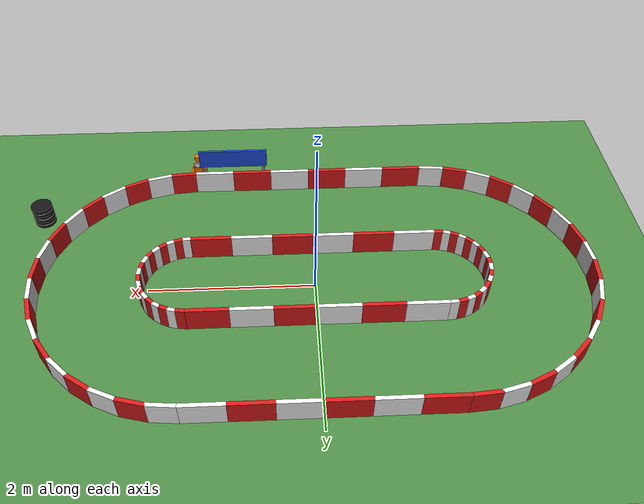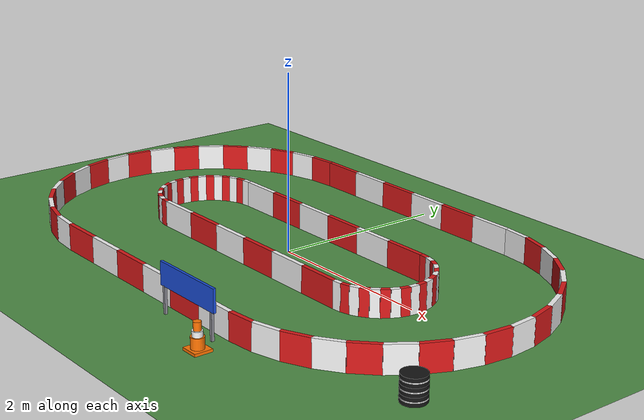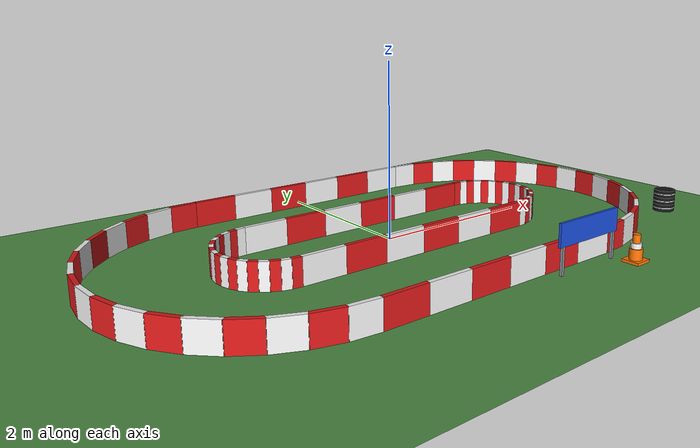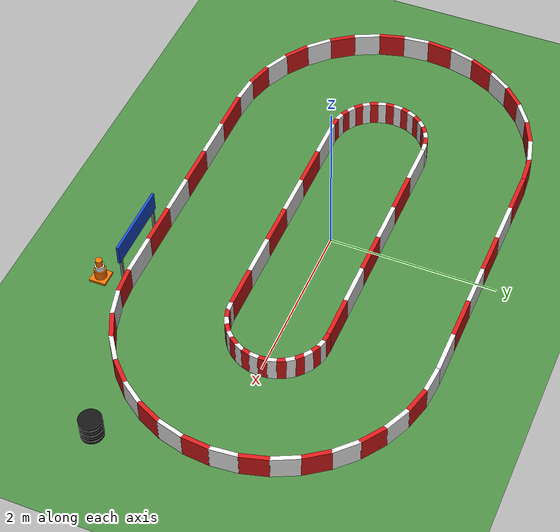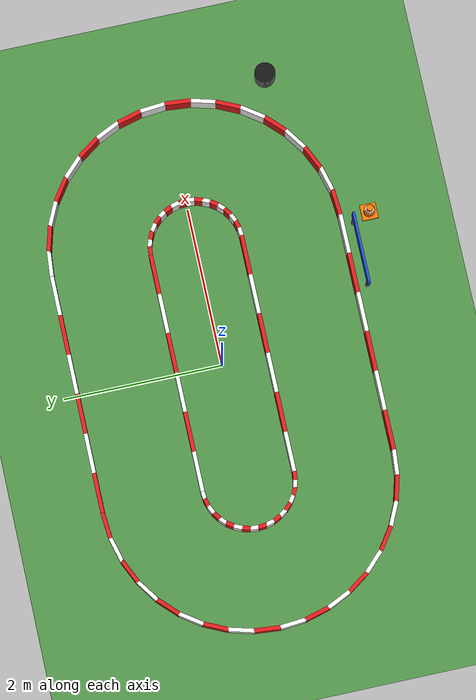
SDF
<sdf version="1.6">
 <world name="apex_circuit">
  <model name="ground_plane">
   <static>true</static>
   <link name="link">
    <collision name="collision">
     <geometry><plane><normal>0 0 1</normal><size>40 40</size></plane></geometry>
     <surface><friction><ode><mu>100</mu><mu2>50</mu2></ode></friction></surface>
    </collision>
    <visual name="visual">
     <geometry><plane><normal>0 0 1</normal><size>40 40</size></plane></geometry>
     <material><ambient>0.3 0.55 0.27 1</ambient><diffuse>0.3 0.55 0.27 1</diffuse></material>
    </visual>
   </link>
  </model>
  <model name="barrier_walls">
   <static>true</static>
   <link name="link">
    <visual name="outer0_v">
     <pose>-1.2500 -1.8250 0.1500 0 0 0.0000</pose>
     <geometry><box><size>0.5000 0.0500 0.3000</size></box></geometry>
     <material><ambient>0.85 0.1 0.1 1</ambient><diffuse>0.85 0.1 0.1 1</diffuse></material>
    </visual>
    <collision name="outer0_c">
     <pose>-1.2500 -1.8250 0.1500 0 0 0.0000</pose>
     <geometry><box><size>0.5000 0.0500 0.3000</size></box></geometry>
    </collision>
    <visual name="outer1_v">
     <pose>-0.7500 -1.8250 0.1500 0 0 0.0000</pose>
     <geometry><box><size>0.5000 0.0500 0.3000</size></box></geometry>
     <material><ambient>0.95 0.95 0.95 1</ambient><diffuse>0.95 0.95 0.95 1</diffuse></material>
    </visual>
    <collision name="outer1_c">
     <pose>-0.7500 -1.8250 0.1500 0 0 0.0000</pose>
     <geometry><box><size>0.5000 0.0500 0.3000</size></box></geometry>
    </collision>
    <visual name="outer2_v">
     <pose>-0.2500 -1.8250 0.1500 0 0 0.0000</pose>
     <geometry><box><size>0.5000 0.0500 0.3000</size></box></geometry>
     <material><ambient>0.85 0.1 0.1 1</ambient><diffuse>0.85 0.1 0.1 1</diffuse></material>
    </visual>
    <collision name="outer2_c">
     <pose>-0.2500 -1.8250 0.1500 0 0 0.0000</pose>
     <geometry><box><size>0.5000 0.0500 0.3000</size></box></geometry>
    </collision>
    <visual name="outer3_v">
     <pose>0.2500 -1.8250 0.1500 0 0 0.0000</pose>
     <geometry><box><size>0.5000 0.0500 0.3000</size></box></geometry>
     <material><ambient>0.95 0.95 0.95 1</ambient><diffuse>0.95 0.95 0.95 1</diffuse></material>
    </visual>
    <collision name="outer3_c">
     <pose>0.2500 -1.8250 0.1500 0 0 0.0000</pose>
     <geometry><box><size>0.5000 0.0500 0.3000</size></box></geometry>
    </collision>
    <visual name="outer4_v">
     <pose>0.7500 -1.8250 0.1500 0 0 0.0000</pose>
     <geometry><box><size>0.5000 0.0500 0.3000</size></box></geometry>
     <material><ambient>0.85 0.1 0.1 1</ambient><diffuse>0.85 0.1 0.1 1</diffuse></material>
    </visual>
    <collision name="outer4_c">
     <pose>0.7500 -1.8250 0.1500 0 0 0.0000</pose>
     <geometry><box><size>0.5000 0.0500 0.3000</size></box></geometry>
    </collision>
    <visual name="outer5_v">
     <pose>1.2500 -1.8250 0.1500 0 0 0.0000</pose>
     <geometry><box><size>0.5000 0.0500 0.3000</size></box></geometry>
     <material><ambient>0.95 0.95 0.95 1</ambient><diffuse>0.95 0.95 0.95 1</diffuse></material>
    </visual>
    <collision name="outer5_c">
     <pose>1.2500 -1.8250 0.1500 0 0 0.0000</pose>
     <geometry><box><size>0.5000 0.0500 0.3000</size></box></geometry>
    </collision>
    <visual name="outer6_v">
     <pose>-1.2500 1.8250 0.1500 0 0 0.0000</pose>
     <geometry><box><size>0.5000 0.0500 0.3000</size></box></geometry>
     <material><ambient>0.85 0.1 0.1 1</ambient><diffuse>0.85 0.1 0.1 1</diffuse></material>
    </visual>
    <collision name="outer6_c">
     <pose>-1.2500 1.8250 0.1500 0 0 0.0000</pose>
     <geometry><box><size>0.5000 0.0500 0.3000</size></box></geometry>
    </collision>
    <visual name="outer7_v">
     <pose>-0.7500 1.8250 0.1500 0 0 0.0000</pose>
     <geometry><box><size>0.5000 0.0500 0.3000</size></box></geometry>
     <material><ambient>0.95 0.95 0.95 1</ambient><diffuse>0.95 0.95 0.95 1</diffuse></material>
    </visual>
    <collision name="outer7_c">
     <pose>-0.7500 1.8250 0.1500 0 0 0.0000</pose>
     <geometry><box><size>0.5000 0.0500 0.3000</size></box></geometry>
    </collision>
    <visual name="outer8_v">
     <pose>-0.2500 1.8250 0.1500 0 0 0.0000</pose>
     <geometry><box><size>0.5000 0.0500 0.3000</size></box></geometry>
     <material><ambient>0.85 0.1 0.1 1</ambient><diffuse>0.85 0.1 0.1 1</diffuse></material>
    </visual>
    <collision name="outer8_c">
     <pose>-0.2500 1.8250 0.1500 0 0 0.0000</pose>
     <geometry><box><size>0.5000 0.0500 0.3000</size></box></geometry>
    </collision>
    <visual name="outer9_v">
     <pose>0.2500 1.8250 0.1500 0 0 0.0000</pose>
     <geometry><box><size>0.5000 0.0500 0.3000</size></box></geometry>
     <material><ambient>0.95 0.95 0.95 1</ambient><diffuse>0.95 0.95 0.95 1</diffuse></material>
    </visual>
    <collision name="outer9_c">
     <pose>0.2500 1.8250 0.1500 0 0 0.0000</pose>
     <geometry><box><size>0.5000 0.0500 0.3000</size></box></geometry>
    </collision>
    <visual name="outer10_v">
     <pose>0.7500 1.8250 0.1500 0 0 0.0000</pose>
     <geometry><box><size>0.5000 0.0500 0.3000</size></box></geometry>
     <material><ambient>0.85 0.1 0.1 1</ambient><diffuse>0.85 0.1 0.1 1</diffuse></material>
    </visual>
    <collision name="outer10_c">
     <pose>0.7500 1.8250 0.1500 0 0 0.0000</pose>
     <geometry><box><size>0.5000 0.0500 0.3000</size></box></geometry>
    </collision>
    <visual name="outer11_v">
     <pose>1.2500 1.8250 0.1500 0 0 0.0000</pose>
     <geometry><box><size>0.5000 0.0500 0.3000</size></box></geometry>
     <material><ambient>0.95 0.95 0.95 1</ambient><diffuse>0.95 0.95 0.95 1</diffuse></material>
    </visual>
    <collision name="outer11_c">
     <pose>1.2500 1.8250 0.1500 0 0 0.0000</pose>
     <geometry><box><size>0.5000 0.0500 0.3000</size></box></geometry>
    </collision>
    <visual name="outer12_v">
     <pose>1.6585 -1.8111 0.1500 0 0 0.0873</pose>
     <geometry><box><size>0.3281 0.0500 0.3000</size></box></geometry>
     <material><ambient>0.85 0.1 0.1 1</ambient><diffuse>0.85 0.1 0.1 1</diffuse></material>
    </visual>
    <collision name="outer12_c">
     <pose>1.6585 -1.8111 0.1500 0 0 0.0873</pose>
     <geometry><box><size>0.3281 0.0500 0.3000</size></box></geometry>
    </collision>
    <visual name="outer13_v">
     <pose>1.9705 -1.7561 0.1500 0 0 0.2618</pose>
     <geometry><box><size>0.3281 0.0500 0.3000</size></box></geometry>
     <material><ambient>0.95 0.95 0.95 1</ambient><diffuse>0.95 0.95 0.95 1</diffuse></material>
    </visual>
    <collision name="outer13_c">
     <pose>1.9705 -1.7561 0.1500 0 0 0.2618</pose>
     <geometry><box><size>0.3281 0.0500 0.3000</size></box></geometry>
    </collision>
    <visual name="outer14_v">
     <pose>2.2683 -1.6477 0.1500 0 0 0.4363</pose>
     <geometry><box><size>0.3281 0.0500 0.3000</size></box></geometry>
     <material><ambient>0.85 0.1 0.1 1</ambient><diffuse>0.85 0.1 0.1 1</diffuse></material>
    </visual>
    <collision name="outer14_c">
     <pose>2.2683 -1.6477 0.1500 0 0 0.4363</pose>
     <geometry><box><size>0.3281 0.0500 0.3000</size></box></geometry>
    </collision>
    <visual name="outer15_v">
     <pose>2.5428 -1.4893 0.1500 0 0 0.6109</pose>
     <geometry><box><size>0.3281 0.0500 0.3000</size></box></geometry>
     <material><ambient>0.95 0.95 0.95 1</ambient><diffuse>0.95 0.95 0.95 1</diffuse></material>
    </visual>
    <collision name="outer15_c">
     <pose>2.5428 -1.4893 0.1500 0 0 0.6109</pose>
     <geometry><box><size>0.3281 0.0500 0.3000</size></box></geometry>
    </collision>
    <visual name="outer16_v">
     <pose>2.7856 -1.2856 0.1500 0 0 0.7854</pose>
     <geometry><box><size>0.3281 0.0500 0.3000</size></box></geometry>
     <material><ambient>0.85 0.1 0.1 1</ambient><diffuse>0.85 0.1 0.1 1</diffuse></material>
    </visual>
    <collision name="outer16_c">
     <pose>2.7856 -1.2856 0.1500 0 0 0.7854</pose>
     <geometry><box><size>0.3281 0.0500 0.3000</size></box></geometry>
    </collision>
    <visual name="outer17_v">
     <pose>2.9893 -1.0428 0.1500 0 0 0.9599</pose>
     <geometry><box><size>0.3281 0.0500 0.3000</size></box></geometry>
     <material><ambient>0.95 0.95 0.95 1</ambient><diffuse>0.95 0.95 0.95 1</diffuse></material>
    </visual>
    <collision name="outer17_c">
     <pose>2.9893 -1.0428 0.1500 0 0 0.9599</pose>
     <geometry><box><size>0.3281 0.0500 0.3000</size></box></geometry>
    </collision>
    <visual name="outer18_v">
     <pose>3.1477 -0.7683 0.1500 0 0 1.1345</pose>
     <geometry><box><size>0.3281 0.0500 0.3000</size></box></geometry>
     <material><ambient>0.85 0.1 0.1 1</ambient><diffuse>0.85 0.1 0.1 1</diffuse></material>
    </visual>
    <collision name="outer18_c">
     <pose>3.1477 -0.7683 0.1500 0 0 1.1345</pose>
     <geometry><box><size>0.3281 0.0500 0.3000</size></box></geometry>
    </collision>
    <visual name="outer19_v">
     <pose>3.2561 -0.4705 0.1500 0 0 1.3090</pose>
     <geometry><box><size>0.3281 0.0500 0.3000</size></box></geometry>
     <material><ambient>0.95 0.95 0.95 1</ambient><diffuse>0.95 0.95 0.95 1</diffuse></material>
    </visual>
    <collision name="outer19_c">
     <pose>3.2561 -0.4705 0.1500 0 0 1.3090</pose>
     <geometry><box><size>0.3281 0.0500 0.3000</size></box></geometry>
    </collision>
    <visual name="outer20_v">
     <pose>3.3111 -0.1585 0.1500 0 0 1.4835</pose>
     <geometry><box><size>0.3281 0.0500 0.3000</size></box></geometry>
     <material><ambient>0.85 0.1 0.1 1</ambient><diffuse>0.85 0.1 0.1 1</diffuse></material>
    </visual>
    <collision name="outer20_c">
     <pose>3.3111 -0.1585 0.1500 0 0 1.4835</pose>
     <geometry><box><size>0.3281 0.0500 0.3000</size></box></geometry>
    </collision>
    <visual name="outer21_v">
     <pose>3.3111 0.1585 0.1500 0 0 1.6581</pose>
     <geometry><box><size>0.3281 0.0500 0.3000</size></box></geometry>
     <material><ambient>0.95 0.95 0.95 1</ambient><diffuse>0.95 0.95 0.95 1</diffuse></material>
    </visual>
    <collision name="outer21_c">
     <pose>3.3111 0.1585 0.1500 0 0 1.6581</pose>
     <geometry><box><size>0.3281 0.0500 0.3000</size></box></geometry>
    </collision>
    <visual name="outer22_v">
     <pose>3.2561 0.4705 0.1500 0 0 1.8326</pose>
     <geometry><box><size>0.3281 0.0500 0.3000</size></box></geometry>
     <material><ambient>0.85 0.1 0.1 1</ambient><diffuse>0.85 0.1 0.1 1</diffuse></material>
    </visual>
    <collision name="outer22_c">
     <pose>3.2561 0.4705 0.1500 0 0 1.8326</pose>
     <geometry><box><size>0.3281 0.0500 0.3000</size></box></geometry>
    </collision>
    <visual name="outer23_v">
     <pose>3.1477 0.7683 0.1500 0 0 2.0071</pose>
     <geometry><box><size>0.3281 0.0500 0.3000</size></box></geometry>
     <material><ambient>0.95 0.95 0.95 1</ambient><diffuse>0.95 0.95 0.95 1</diffuse></material>
    </visual>
    <collision name="outer23_c">
     <pose>3.1477 0.7683 0.1500 0 0 2.0071</pose>
     <geometry><box><size>0.3281 0.0500 0.3000</size></box></geometry>
    </collision>
    <visual name="outer24_v">
     <pose>2.9893 1.0428 0.1500 0 0 2.1817</pose>
     <geometry><box><size>0.3281 0.0500 0.3000</size></box></geometry>
     <material><ambient>0.85 0.1 0.1 1</ambient><diffuse>0.85 0.1 0.1 1</diffuse></material>
    </visual>
    <collision name="outer24_c">
     <pose>2.9893 1.0428 0.1500 0 0 2.1817</pose>
     <geometry><box><size>0.3281 0.0500 0.3000</size></box></geometry>
    </collision>
    <visual name="outer25_v">
     <pose>2.7856 1.2856 0.1500 0 0 2.3562</pose>
     <geometry><box><size>0.3281 0.0500 0.3000</size></box></geometry>
     <material><ambient>0.95 0.95 0.95 1</ambient><diffuse>0.95 0.95 0.95 1</diffuse></material>
    </visual>
    <collision name="outer25_c">
     <pose>2.7856 1.2856 0.1500 0 0 2.3562</pose>
     <geometry><box><size>0.3281 0.0500 0.3000</size></box></geometry>
    </collision>
    <visual name="outer26_v">
     <pose>2.5428 1.4893 0.1500 0 0 2.5307</pose>
     <geometry><box><size>0.3281 0.0500 0.3000</size></box></geometry>
     <material><ambient>0.85 0.1 0.1 1</ambient><diffuse>0.85 0.1 0.1 1</diffuse></material>
    </visual>
    <collision name="outer26_c">
     <pose>2.5428 1.4893 0.1500 0 0 2.5307</pose>
     <geometry><box><size>0.3281 0.0500 0.3000</size></box></geometry>
    </collision>
    <visual name="outer27_v">
     <pose>2.2683 1.6477 0.1500 0 0 2.7053</pose>
     <geometry><box><size>0.3281 0.0500 0.3000</size></box></geometry>
     <material><ambient>0.95 0.95 0.95 1</ambient><diffuse>0.95 0.95 0.95 1</diffuse></material>
    </visual>
    <collision name="outer27_c">
     <pose>2.2683 1.6477 0.1500 0 0 2.7053</pose>
     <geometry><box><size>0.3281 0.0500 0.3000</size></box></geometry>
    </collision>
    <visual name="outer28_v">
     <pose>1.9705 1.7561 0.1500 0 0 2.8798</pose>
     <geometry><box><size>0.3281 0.0500 0.3000</size></box></geometry>
     <material><ambient>0.85 0.1 0.1 1</ambient><diffuse>0.85 0.1 0.1 1</diffuse></material>
    </visual>
    <collision name="outer28_c">
     <pose>1.9705 1.7561 0.1500 0 0 2.8798</pose>
     <geometry><box><size>0.3281 0.0500 0.3000</size></box></geometry>
    </collision>
    <visual name="outer29_v">
     <pose>1.6585 1.8111 0.1500 0 0 3.0543</pose>
     <geometry><box><size>0.3281 0.0500 0.3000</size></box></geometry>
     <material><ambient>0.95 0.95 0.95 1</ambient><diffuse>0.95 0.95 0.95 1</diffuse></material>
    </visual>
    <collision name="outer29_c">
     <pose>1.6585 1.8111 0.1500 0 0 3.0543</pose>
     <geometry><box><size>0.3281 0.0500 0.3000</size></box></geometry>
    </collision>
    <visual name="outer30_v">
     <pose>-1.6585 1.8111 0.1500 0 0 3.2289</pose>
     <geometry><box><size>0.3281 0.0500 0.3000</size></box></geometry>
     <material><ambient>0.85 0.1 0.1 1</ambient><diffuse>0.85 0.1 0.1 1</diffuse></material>
    </visual>
    <collision name="outer30_c">
     <pose>-1.6585 1.8111 0.1500 0 0 3.2289</pose>
     <geometry><box><size>0.3281 0.0500 0.3000</size></box></geometry>
    </collision>
    <visual name="outer31_v">
     <pose>-1.9705 1.7561 0.1500 0 0 3.4034</pose>
     <geometry><box><size>0.3281 0.0500 0.3000</size></box></geometry>
     <material><ambient>0.95 0.95 0.95 1</ambient><diffuse>0.95 0.95 0.95 1</diffuse></material>
    </visual>
    <collision name="outer31_c">
     <pose>-1.9705 1.7561 0.1500 0 0 3.4034</pose>
     <geometry><box><size>0.3281 0.0500 0.3000</size></box></geometry>
    </collision>
    <visual name="outer32_v">
     <pose>-2.2683 1.6477 0.1500 0 0 3.5779</pose>
     <geometry><box><size>0.3281 0.0500 0.3000</size></box></geometry>
     <material><ambient>0.85 0.1 0.1 1</ambient><diffuse>0.85 0.1 0.1 1</diffuse></material>
    </visual>
    <collision name="outer32_c">
     <pose>-2.2683 1.6477 0.1500 0 0 3.5779</pose>
     <geometry><box><size>0.3281 0.0500 0.3000</size></box></geometry>
    </collision>
    <visual name="outer33_v">
     <pose>-2.5428 1.4893 0.1500 0 0 3.7525</pose>
     <geometry><box><size>0.3281 0.0500 0.3000</size></box></geometry>
     <material><ambient>0.95 0.95 0.95 1</ambient><diffuse>0.95 0.95 0.95 1</diffuse></material>
    </visual>
    <collision name="outer33_c">
     <pose>-2.5428 1.4893 0.1500 0 0 3.7525</pose>
     <geometry><box><size>0.3281 0.0500 0.3000</size></box></geometry>
    </collision>
    <visual name="outer34_v">
     <pose>-2.7856 1.2856 0.1500 0 0 3.9270</pose>
     <geometry><box><size>0.3281 0.0500 0.3000</size></box></geometry>
     <material><ambient>0.85 0.1 0.1 1</ambient><diffuse>0.85 0.1 0.1 1</diffuse></material>
    </visual>
    <collision name="outer34_c">
     <pose>-2.7856 1.2856 0.1500 0 0 3.9270</pose>
     <geometry><box><size>0.3281 0.0500 0.3000</size></box></geometry>
    </collision>
    <visual name="outer35_v">
     <pose>-2.9893 1.0428 0.1500 0 0 4.1015</pose>
     <geometry><box><size>0.3281 0.0500 0.3000</size></box></geometry>
     <material><ambient>0.95 0.95 0.95 1</ambient><diffuse>0.95 0.95 0.95 1</diffuse></material>
    </visual>
    <collision name="outer35_c">
     <pose>-2.9893 1.0428 0.1500 0 0 4.1015</pose>
     <geometry><box><size>0.3281 0.0500 0.3000</size></box></geometry>
    </collision>
    <visual name="outer36_v">
     <pose>-3.1477 0.7683 0.1500 0 0 4.2761</pose>
     <geometry><box><size>0.3281 0.0500 0.3000</size></box></geometry>
     <material><ambient>0.85 0.1 0.1 1</ambient><diffuse>0.85 0.1 0.1 1</diffuse></material>
    </visual>
    <collision name="outer36_c">
     <pose>-3.1477 0.7683 0.1500 0 0 4.2761</pose>
     <geometry><box><size>0.3281 0.0500 0.3000</size></box></geometry>
    </collision>
    <visual name="outer37_v">
     <pose>-3.2561 0.4705 0.1500 0 0 4.4506</pose>
     <geometry><box><size>0.3281 0.0500 0.3000</size></box></geometry>
     <material><ambient>0.95 0.95 0.95 1</ambient><diffuse>0.95 0.95 0.95 1</diffuse></material>
    </visual>
    <collision name="outer37_c">
     <pose>-3.2561 0.4705 0.1500 0 0 4.4506</pose>
     <geometry><box><size>0.3281 0.0500 0.3000</size></box></geometry>
    </collision>
    <visual name="outer38_v">
     <pose>-3.3111 0.1585 0.1500 0 0 4.6251</pose>
     <geometry><box><size>0.3281 0.0500 0.3000</size></box></geometry>
     <material><ambient>0.85 0.1 0.1 1</ambient><diffuse>0.85 0.1 0.1 1</diffuse></material>
    </visual>
    <collision name="outer38_c">
     <pose>-3.3111 0.1585 0.1500 0 0 4.6251</pose>
     <geometry><box><size>0.3281 0.0500 0.3000</size></box></geometry>
    </collision>
    <visual name="outer39_v">
     <pose>-3.3111 -0.1585 0.1500 0 0 4.7997</pose>
     <geometry><box><size>0.3281 0.0500 0.3000</size></box></geometry>
     <material><ambient>0.95 0.95 0.95 1</ambient><diffuse>0.95 0.95 0.95 1</diffuse></material>
    </visual>
    <collision name="outer39_c">
     <pose>-3.3111 -0.1585 0.1500 0 0 4.7997</pose>
     <geometry><box><size>0.3281 0.0500 0.3000</size></box></geometry>
    </collision>
    <visual name="outer40_v">
     <pose>-3.2561 -0.4705 0.1500 0 0 4.9742</pose>
     <geometry><box><size>0.3281 0.0500 0.3000</size></box></geometry>
     <material><ambient>0.85 0.1 0.1 1</ambient><diffuse>0.85 0.1 0.1 1</diffuse></material>
    </visual>
    <collision name="outer40_c">
     <pose>-3.2561 -0.4705 0.1500 0 0 4.9742</pose>
     <geometry><box><size>0.3281 0.0500 0.3000</size></box></geometry>
    </collision>
    <visual name="outer41_v">
     <pose>-3.1477 -0.7683 0.1500 0 0 5.1487</pose>
     <geometry><box><size>0.3281 0.0500 0.3000</size></box></geometry>
     <material><ambient>0.95 0.95 0.95 1</ambient><diffuse>0.95 0.95 0.95 1</diffuse></material>
    </visual>
    <collision name="outer41_c">
     <pose>-3.1477 -0.7683 0.1500 0 0 5.1487</pose>
     <geometry><box><size>0.3281 0.0500 0.3000</size></box></geometry>
    </collision>
    <visual name="outer42_v">
     <pose>-2.9893 -1.0428 0.1500 0 0 5.3233</pose>
     <geometry><box><size>0.3281 0.0500 0.3000</size></box></geometry>
     <material><ambient>0.85 0.1 0.1 1</ambient><diffuse>0.85 0.1 0.1 1</diffuse></material>
    </visual>
    <collision name="outer42_c">
     <pose>-2.9893 -1.0428 0.1500 0 0 5.3233</pose>
     <geometry><box><size>0.3281 0.0500 0.3000</size></box></geometry>
    </collision>
    <visual name="outer43_v">
     <pose>-2.7856 -1.2856 0.1500 0 0 5.4978</pose>
     <geometry><box><size>0.3281 0.0500 0.3000</size></box></geometry>
     <material><ambient>0.95 0.95 0.95 1</ambient><diffuse>0.95 0.95 0.95 1</diffuse></material>
    </visual>
    <collision name="outer43_c">
     <pose>-2.7856 -1.2856 0.1500 0 0 5.4978</pose>
     <geometry><box><size>0.3281 0.0500 0.3000</size></box></geometry>
    </collision>
    <visual name="outer44_v">
     <pose>-2.5428 -1.4893 0.1500 0 0 5.6723</pose>
     <geometry><box><size>0.3281 0.0500 0.3000</size></box></geometry>
     <material><ambient>0.85 0.1 0.1 1</ambient><diffuse>0.85 0.1 0.1 1</diffuse></material>
    </visual>
    <collision name="outer44_c">
     <pose>-2.5428 -1.4893 0.1500 0 0 5.6723</pose>
     <geometry><box><size>0.3281 0.0500 0.3000</size></box></geometry>
    </collision>
    <visual name="outer45_v">
     <pose>-2.2683 -1.6477 0.1500 0 0 5.8469</pose>
     <geometry><box><size>0.3281 0.0500 0.3000</size></box></geometry>
     <material><ambient>0.95 0.95 0.95 1</ambient><diffuse>0.95 0.95 0.95 1</diffuse></material>
    </visual>
    <collision name="outer45_c">
     <pose>-2.2683 -1.6477 0.1500 0 0 5.8469</pose>
     <geometry><box><size>0.3281 0.0500 0.3000</size></box></geometry>
    </collision>
    <visual name="outer46_v">
     <pose>-1.9705 -1.7561 0.1500 0 0 6.0214</pose>
     <geometry><box><size>0.3281 0.0500 0.3000</size></box></geometry>
     <material><ambient>0.85 0.1 0.1 1</ambient><diffuse>0.85 0.1 0.1 1</diffuse></material>
    </visual>
    <collision name="outer46_c">
     <pose>-1.9705 -1.7561 0.1500 0 0 6.0214</pose>
     <geometry><box><size>0.3281 0.0500 0.3000</size></box></geometry>
    </collision>
    <visual name="outer47_v">
     <pose>-1.6585 -1.8111 0.1500 0 0 6.1959</pose>
     <geometry><box><size>0.3281 0.0500 0.3000</size></box></geometry>
     <material><ambient>0.95 0.95 0.95 1</ambient><diffuse>0.95 0.95 0.95 1</diffuse></material>
    </visual>
    <collision name="outer47_c">
     <pose>-1.6585 -1.8111 0.1500 0 0 6.1959</pose>
     <geometry><box><size>0.3281 0.0500 0.3000</size></box></geometry>
    </collision>
    <visual name="inner0_v">
     <pose>-1.2500 -0.5750 0.1500 0 0 0.0000</pose>
     <geometry><box><size>0.5000 0.0500 0.3000</size></box></geometry>
     <material><ambient>0.95 0.95 0.95 1</ambient><diffuse>0.95 0.95 0.95 1</diffuse></material>
    </visual>
    <collision name="inner0_c">
     <pose>-1.2500 -0.5750 0.1500 0 0 0.0000</pose>
     <geometry><box><size>0.5000 0.0500 0.3000</size></box></geometry>
    </collision>
    <visual name="inner1_v">
     <pose>-0.7500 -0.5750 0.1500 0 0 0.0000</pose>
     <geometry><box><size>0.5000 0.0500 0.3000</size></box></geometry>
     <material><ambient>0.85 0.1 0.1 1</ambient><diffuse>0.85 0.1 0.1 1</diffuse></material>
    </visual>
    <collision name="inner1_c">
     <pose>-0.7500 -0.5750 0.1500 0 0 0.0000</pose>
     <geometry><box><size>0.5000 0.0500 0.3000</size></box></geometry>
    </collision>
    <visual name="inner2_v">
     <pose>-0.2500 -0.5750 0.1500 0 0 0.0000</pose>
     <geometry><box><size>0.5000 0.0500 0.3000</size></box></geometry>
     <material><ambient>0.95 0.95 0.95 1</ambient><diffuse>0.95 0.95 0.95 1</diffuse></material>
    </visual>
    <collision name="inner2_c">
     <pose>-0.2500 -0.5750 0.1500 0 0 0.0000</pose>
     <geometry><box><size>0.5000 0.0500 0.3000</size></box></geometry>
    </collision>
    <visual name="inner3_v">
     <pose>0.2500 -0.5750 0.1500 0 0 0.0000</pose>
     <geometry><box><size>0.5000 0.0500 0.3000</size></box></geometry>
     <material><ambient>0.85 0.1 0.1 1</ambient><diffuse>0.85 0.1 0.1 1</diffuse></material>
    </visual>
    <collision name="inner3_c">
     <pose>0.2500 -0.5750 0.1500 0 0 0.0000</pose>
     <geometry><box><size>0.5000 0.0500 0.3000</size></box></geometry>
    </collision>
    <visual name="inner4_v">
     <pose>0.7500 -0.5750 0.1500 0 0 0.0000</pose>
     <geometry><box><size>0.5000 0.0500 0.3000</size></box></geometry>
     <material><ambient>0.95 0.95 0.95 1</ambient><diffuse>0.95 0.95 0.95 1</diffuse></material>
    </visual>
    <collision name="inner4_c">
     <pose>0.7500 -0.5750 0.1500 0 0 0.0000</pose>
     <geometry><box><size>0.5000 0.0500 0.3000</size></box></geometry>
    </collision>
    <visual name="inner5_v">
     <pose>1.2500 -0.5750 0.1500 0 0 0.0000</pose>
     <geometry><box><size>0.5000 0.0500 0.3000</size></box></geometry>
     <material><ambient>0.85 0.1 0.1 1</ambient><diffuse>0.85 0.1 0.1 1</diffuse></material>
    </visual>
    <collision name="inner5_c">
     <pose>1.2500 -0.5750 0.1500 0 0 0.0000</pose>
     <geometry><box><size>0.5000 0.0500 0.3000</size></box></geometry>
    </collision>
    <visual name="inner6_v">
     <pose>-1.2500 0.5750 0.1500 0 0 0.0000</pose>
     <geometry><box><size>0.5000 0.0500 0.3000</size></box></geometry>
     <material><ambient>0.95 0.95 0.95 1</ambient><diffuse>0.95 0.95 0.95 1</diffuse></material>
    </visual>
    <collision name="inner6_c">
     <pose>-1.2500 0.5750 0.1500 0 0 0.0000</pose>
     <geometry><box><size>0.5000 0.0500 0.3000</size></box></geometry>
    </collision>
    <visual name="inner7_v">
     <pose>-0.7500 0.5750 0.1500 0 0 0.0000</pose>
     <geometry><box><size>0.5000 0.0500 0.3000</size></box></geometry>
     <material><ambient>0.85 0.1 0.1 1</ambient><diffuse>0.85 0.1 0.1 1</diffuse></material>
    </visual>
    <collision name="inner7_c">
     <pose>-0.7500 0.5750 0.1500 0 0 0.0000</pose>
     <geometry><box><size>0.5000 0.0500 0.3000</size></box></geometry>
    </collision>
    <visual name="inner8_v">
     <pose>-0.2500 0.5750 0.1500 0 0 0.0000</pose>
     <geometry><box><size>0.5000 0.0500 0.3000</size></box></geometry>
     <material><ambient>0.95 0.95 0.95 1</ambient><diffuse>0.95 0.95 0.95 1</diffuse></material>
    </visual>
    <collision name="inner8_c">
     <pose>-0.2500 0.5750 0.1500 0 0 0.0000</pose>
     <geometry><box><size>0.5000 0.0500 0.3000</size></box></geometry>
    </collision>
    <visual name="inner9_v">
     <pose>0.2500 0.5750 0.1500 0 0 0.0000</pose>
     <geometry><box><size>0.5000 0.0500 0.3000</size></box></geometry>
     <material><ambient>0.85 0.1 0.1 1</ambient><diffuse>0.85 0.1 0.1 1</diffuse></material>
    </visual>
    <collision name="inner9_c">
     <pose>0.2500 0.5750 0.1500 0 0 0.0000</pose>
     <geometry><box><size>0.5000 0.0500 0.3000</size></box></geometry>
    </collision>
    <visual name="inner10_v">
     <pose>0.7500 0.5750 0.1500 0 0 0.0000</pose>
     <geometry><box><size>0.5000 0.0500 0.3000</size></box></geometry>
     <material><ambient>0.95 0.95 0.95 1</ambient><diffuse>0.95 0.95 0.95 1</diffuse></material>
    </visual>
    <collision name="inner10_c">
     <pose>0.7500 0.5750 0.1500 0 0 0.0000</pose>
     <geometry><box><size>0.5000 0.0500 0.3000</size></box></geometry>
    </collision>
    <visual name="inner11_v">
     <pose>1.2500 0.5750 0.1500 0 0 0.0000</pose>
     <geometry><box><size>0.5000 0.0500 0.3000</size></box></geometry>
     <material><ambient>0.85 0.1 0.1 1</ambient><diffuse>0.85 0.1 0.1 1</diffuse></material>
    </visual>
    <collision name="inner11_c">
     <pose>1.2500 0.5750 0.1500 0 0 0.0000</pose>
     <geometry><box><size>0.5000 0.0500 0.3000</size></box></geometry>
    </collision>
    <visual name="inner12_v">
     <pose>1.5499 -0.5706 0.1500 0 0 0.0873</pose>
     <geometry><box><size>0.1102 0.0500 0.3000</size></box></geometry>
     <material><ambient>0.95 0.95 0.95 1</ambient><diffuse>0.95 0.95 0.95 1</diffuse></material>
    </visual>
    <collision name="inner12_c">
     <pose>1.5499 -0.5706 0.1500 0 0 0.0873</pose>
     <geometry><box><size>0.1102 0.0500 0.3000</size></box></geometry>
    </collision>
    <visual name="inner13_v">
     <pose>1.6483 -0.5533 0.1500 0 0 0.2618</pose>
     <geometry><box><size>0.1102 0.0500 0.3000</size></box></geometry>
     <material><ambient>0.85 0.1 0.1 1</ambient><diffuse>0.85 0.1 0.1 1</diffuse></material>
    </visual>
    <collision name="inner13_c">
     <pose>1.6483 -0.5533 0.1500 0 0 0.2618</pose>
     <geometry><box><size>0.1102 0.0500 0.3000</size></box></geometry>
    </collision>
    <visual name="inner14_v">
     <pose>1.7421 -0.5191 0.1500 0 0 0.4363</pose>
     <geometry><box><size>0.1102 0.0500 0.3000</size></box></geometry>
     <material><ambient>0.95 0.95 0.95 1</ambient><diffuse>0.95 0.95 0.95 1</diffuse></material>
    </visual>
    <collision name="inner14_c">
     <pose>1.7421 -0.5191 0.1500 0 0 0.4363</pose>
     <geometry><box><size>0.1102 0.0500 0.3000</size></box></geometry>
    </collision>
    <visual name="inner15_v">
     <pose>1.8286 -0.4692 0.1500 0 0 0.6109</pose>
     <geometry><box><size>0.1102 0.0500 0.3000</size></box></geometry>
     <material><ambient>0.85 0.1 0.1 1</ambient><diffuse>0.85 0.1 0.1 1</diffuse></material>
    </visual>
    <collision name="inner15_c">
     <pose>1.8286 -0.4692 0.1500 0 0 0.6109</pose>
     <geometry><box><size>0.1102 0.0500 0.3000</size></box></geometry>
    </collision>
    <visual name="inner16_v">
     <pose>1.9050 -0.4050 0.1500 0 0 0.7854</pose>
     <geometry><box><size>0.1102 0.0500 0.3000</size></box></geometry>
     <material><ambient>0.95 0.95 0.95 1</ambient><diffuse>0.95 0.95 0.95 1</diffuse></material>
    </visual>
    <collision name="inner16_c">
     <pose>1.9050 -0.4050 0.1500 0 0 0.7854</pose>
     <geometry><box><size>0.1102 0.0500 0.3000</size></box></geometry>
    </collision>
    <visual name="inner17_v">
     <pose>1.9692 -0.3286 0.1500 0 0 0.9599</pose>
     <geometry><box><size>0.1102 0.0500 0.3000</size></box></geometry>
     <material><ambient>0.85 0.1 0.1 1</ambient><diffuse>0.85 0.1 0.1 1</diffuse></material>
    </visual>
    <collision name="inner17_c">
     <pose>1.9692 -0.3286 0.1500 0 0 0.9599</pose>
     <geometry><box><size>0.1102 0.0500 0.3000</size></box></geometry>
    </collision>
    <visual name="inner18_v">
     <pose>2.0191 -0.2421 0.1500 0 0 1.1345</pose>
     <geometry><box><size>0.1102 0.0500 0.3000</size></box></geometry>
     <material><ambient>0.95 0.95 0.95 1</ambient><diffuse>0.95 0.95 0.95 1</diffuse></material>
    </visual>
    <collision name="inner18_c">
     <pose>2.0191 -0.2421 0.1500 0 0 1.1345</pose>
     <geometry><box><size>0.1102 0.0500 0.3000</size></box></geometry>
    </collision>
    <visual name="inner19_v">
     <pose>2.0533 -0.1483 0.1500 0 0 1.3090</pose>
     <geometry><box><size>0.1102 0.0500 0.3000</size></box></geometry>
     <material><ambient>0.85 0.1 0.1 1</ambient><diffuse>0.85 0.1 0.1 1</diffuse></material>
    </visual>
    <collision name="inner19_c">
     <pose>2.0533 -0.1483 0.1500 0 0 1.3090</pose>
     <geometry><box><size>0.1102 0.0500 0.3000</size></box></geometry>
    </collision>
    <visual name="inner20_v">
     <pose>2.0706 -0.0499 0.1500 0 0 1.4835</pose>
     <geometry><box><size>0.1102 0.0500 0.3000</size></box></geometry>
     <material><ambient>0.95 0.95 0.95 1</ambient><diffuse>0.95 0.95 0.95 1</diffuse></material>
    </visual>
    <collision name="inner20_c">
     <pose>2.0706 -0.0499 0.1500 0 0 1.4835</pose>
     <geometry><box><size>0.1102 0.0500 0.3000</size></box></geometry>
    </collision>
    <visual name="inner21_v">
     <pose>2.0706 0.0499 0.1500 0 0 1.6581</pose>
     <geometry><box><size>0.1102 0.0500 0.3000</size></box></geometry>
     <material><ambient>0.85 0.1 0.1 1</ambient><diffuse>0.85 0.1 0.1 1</diffuse></material>
    </visual>
    <collision name="inner21_c">
     <pose>2.0706 0.0499 0.1500 0 0 1.6581</pose>
     <geometry><box><size>0.1102 0.0500 0.3000</size></box></geometry>
    </collision>
    <visual name="inner22_v">
     <pose>2.0533 0.1483 0.1500 0 0 1.8326</pose>
     <geometry><box><size>0.1102 0.0500 0.3000</size></box></geometry>
     <material><ambient>0.95 0.95 0.95 1</ambient><diffuse>0.95 0.95 0.95 1</diffuse></material>
    </visual>
    <collision name="inner22_c">
     <pose>2.0533 0.1483 0.1500 0 0 1.8326</pose>
     <geometry><box><size>0.1102 0.0500 0.3000</size></box></geometry>
    </collision>
    <visual name="inner23_v">
     <pose>2.0191 0.2421 0.1500 0 0 2.0071</pose>
     <geometry><box><size>0.1102 0.0500 0.3000</size></box></geometry>
     <material><ambient>0.85 0.1 0.1 1</ambient><diffuse>0.85 0.1 0.1 1</diffuse></material>
    </visual>
    <collision name="inner23_c">
     <pose>2.0191 0.2421 0.1500 0 0 2.0071</pose>
     <geometry><box><size>0.1102 0.0500 0.3000</size></box></geometry>
    </collision>
    <visual name="inner24_v">
     <pose>1.9692 0.3286 0.1500 0 0 2.1817</pose>
     <geometry><box><size>0.1102 0.0500 0.3000</size></box></geometry>
     <material><ambient>0.95 0.95 0.95 1</ambient><diffuse>0.95 0.95 0.95 1</diffuse></material>
    </visual>
    <collision name="inner24_c">
     <pose>1.9692 0.3286 0.1500 0 0 2.1817</pose>
     <geometry><box><size>0.1102 0.0500 0.3000</size></box></geometry>
    </collision>
    <visual name="inner25_v">
     <pose>1.9050 0.4050 0.1500 0 0 2.3562</pose>
     <geometry><box><size>0.1102 0.0500 0.3000</size></box></geometry>
     <material><ambient>0.85 0.1 0.1 1</ambient><diffuse>0.85 0.1 0.1 1</diffuse></material>
    </visual>
    <collision name="inner25_c">
     <pose>1.9050 0.4050 0.1500 0 0 2.3562</pose>
     <geometry><box><size>0.1102 0.0500 0.3000</size></box></geometry>
    </collision>
    <visual name="inner26_v">
     <pose>1.8286 0.4692 0.1500 0 0 2.5307</pose>
     <geometry><box><size>0.1102 0.0500 0.3000</size></box></geometry>
     <material><ambient>0.95 0.95 0.95 1</ambient><diffuse>0.95 0.95 0.95 1</diffuse></material>
    </visual>
    <collision name="inner26_c">
     <pose>1.8286 0.4692 0.1500 0 0 2.5307</pose>
     <geometry><box><size>0.1102 0.0500 0.3000</size></box></geometry>
    </collision>
    <visual name="inner27_v">
     <pose>1.7421 0.5191 0.1500 0 0 2.7053</pose>
     <geometry><box><size>0.1102 0.0500 0.3000</size></box></geometry>
     <material><ambient>0.85 0.1 0.1 1</ambient><diffuse>0.85 0.1 0.1 1</diffuse></material>
    </visual>
    <collision name="inner27_c">
     <pose>1.7421 0.5191 0.1500 0 0 2.7053</pose>
     <geometry><box><size>0.1102 0.0500 0.3000</size></box></geometry>
    </collision>
    <visual name="inner28_v">
     <pose>1.6483 0.5533 0.1500 0 0 2.8798</pose>
     <geometry><box><size>0.1102 0.0500 0.3000</size></box></geometry>
     <material><ambient>0.95 0.95 0.95 1</ambient><diffuse>0.95 0.95 0.95 1</diffuse></material>
    </visual>
    <collision name="inner28_c">
     <pose>1.6483 0.5533 0.1500 0 0 2.8798</pose>
     <geometry><box><size>0.1102 0.0500 0.3000</size></box></geometry>
    </collision>
    <visual name="inner29_v">
     <pose>1.5499 0.5706 0.1500 0 0 3.0543</pose>
     <geometry><box><size>0.1102 0.0500 0.3000</size></box></geometry>
     <material><ambient>0.85 0.1 0.1 1</ambient><diffuse>0.85 0.1 0.1 1</diffuse></material>
    </visual>
    <collision name="inner29_c">
     <pose>1.5499 0.5706 0.1500 0 0 3.0543</pose>
     <geometry><box><size>0.1102 0.0500 0.3000</size></box></geometry>
    </collision>
    <visual name="inner30_v">
     <pose>-1.5499 0.5706 0.1500 0 0 3.2289</pose>
     <geometry><box><size>0.1102 0.0500 0.3000</size></box></geometry>
     <material><ambient>0.95 0.95 0.95 1</ambient><diffuse>0.95 0.95 0.95 1</diffuse></material>
    </visual>
    <collision name="inner30_c">
     <pose>-1.5499 0.5706 0.1500 0 0 3.2289</pose>
     <geometry><box><size>0.1102 0.0500 0.3000</size></box></geometry>
    </collision>
    <visual name="inner31_v">
     <pose>-1.6483 0.5533 0.1500 0 0 3.4034</pose>
     <geometry><box><size>0.1102 0.0500 0.3000</size></box></geometry>
     <material><ambient>0.85 0.1 0.1 1</ambient><diffuse>0.85 0.1 0.1 1</diffuse></material>
    </visual>
    <collision name="inner31_c">
     <pose>-1.6483 0.5533 0.1500 0 0 3.4034</pose>
     <geometry><box><size>0.1102 0.0500 0.3000</size></box></geometry>
    </collision>
    <visual name="inner32_v">
     <pose>-1.7421 0.5191 0.1500 0 0 3.5779</pose>
     <geometry><box><size>0.1102 0.0500 0.3000</size></box></geometry>
     <material><ambient>0.95 0.95 0.95 1</ambient><diffuse>0.95 0.95 0.95 1</diffuse></material>
    </visual>
    <collision name="inner32_c">
     <pose>-1.7421 0.5191 0.1500 0 0 3.5779</pose>
     <geometry><box><size>0.1102 0.0500 0.3000</size></box></geometry>
    </collision>
    <visual name="inner33_v">
     <pose>-1.8286 0.4692 0.1500 0 0 3.7525</pose>
     <geometry><box><size>0.1102 0.0500 0.3000</size></box></geometry>
     <material><ambient>0.85 0.1 0.1 1</ambient><diffuse>0.85 0.1 0.1 1</diffuse></material>
    </visual>
    <collision name="inner33_c">
     <pose>-1.8286 0.4692 0.1500 0 0 3.7525</pose>
     <geometry><box><size>0.1102 0.0500 0.3000</size></box></geometry>
    </collision>
    <visual name="inner34_v">
     <pose>-1.9050 0.4050 0.1500 0 0 3.9270</pose>
     <geometry><box><size>0.1102 0.0500 0.3000</size></box></geometry>
     <material><ambient>0.95 0.95 0.95 1</ambient><diffuse>0.95 0.95 0.95 1</diffuse></material>
    </visual>
    <collision name="inner34_c">
     <pose>-1.9050 0.4050 0.1500 0 0 3.9270</pose>
     <geometry><box><size>0.1102 0.0500 0.3000</size></box></geometry>
    </collision>
    <visual name="inner35_v">
     <pose>-1.9692 0.3286 0.1500 0 0 4.1015</pose>
     <geometry><box><size>0.1102 0.0500 0.3000</size></box></geometry>
     <material><ambient>0.85 0.1 0.1 1</ambient><diffuse>0.85 0.1 0.1 1</diffuse></material>
    </visual>
    <collision name="inner35_c">
     <pose>-1.9692 0.3286 0.1500 0 0 4.1015</pose>
     <geometry><box><size>0.1102 0.0500 0.3000</size></box></geometry>
    </collision>
    <visual name="inner36_v">
     <pose>-2.0191 0.2421 0.1500 0 0 4.2761</pose>
     <geometry><box><size>0.1102 0.0500 0.3000</size></box></geometry>
     <material><ambient>0.95 0.95 0.95 1</ambient><diffuse>0.95 0.95 0.95 1</diffuse></material>
    </visual>
    <collision name="inner36_c">
     <pose>-2.0191 0.2421 0.1500 0 0 4.2761</pose>
     <geometry><box><size>0.1102 0.0500 0.3000</size></box></geometry>
    </collision>
    <visual name="inner37_v">
     <pose>-2.0533 0.1483 0.1500 0 0 4.4506</pose>
     <geometry><box><size>0.1102 0.0500 0.3000</size></box></geometry>
     <material><ambient>0.85 0.1 0.1 1</ambient><diffuse>0.85 0.1 0.1 1</diffuse></material>
    </visual>
    <collision name="inner37_c">
     <pose>-2.0533 0.1483 0.1500 0 0 4.4506</pose>
     <geometry><box><size>0.1102 0.0500 0.3000</size></box></geometry>
    </collision>
    <visual name="inner38_v">
     <pose>-2.0706 0.0499 0.1500 0 0 4.6251</pose>
     <geometry><box><size>0.1102 0.0500 0.3000</size></box></geometry>
     <material><ambient>0.95 0.95 0.95 1</ambient><diffuse>0.95 0.95 0.95 1</diffuse></material>
    </visual>
    <collision name="inner38_c">
     <pose>-2.0706 0.0499 0.1500 0 0 4.6251</pose>
     <geometry><box><size>0.1102 0.0500 0.3000</size></box></geometry>
    </collision>
    <visual name="inner39_v">
     <pose>-2.0706 -0.0499 0.1500 0 0 4.7997</pose>
     <geometry><box><size>0.1102 0.0500 0.3000</size></box></geometry>
     <material><ambient>0.85 0.1 0.1 1</ambient><diffuse>0.85 0.1 0.1 1</diffuse></material>
    </visual>
    <collision name="inner39_c">
     <pose>-2.0706 -0.0499 0.1500 0 0 4.7997</pose>
     <geometry><box><size>0.1102 0.0500 0.3000</size></box></geometry>
    </collision>
    <visual name="inner40_v">
     <pose>-2.0533 -0.1483 0.1500 0 0 4.9742</pose>
     <geometry><box><size>0.1102 0.0500 0.3000</size></box></geometry>
     <material><ambient>0.95 0.95 0.95 1</ambient><diffuse>0.95 0.95 0.95 1</diffuse></material>
    </visual>
    <collision name="inner40_c">
     <pose>-2.0533 -0.1483 0.1500 0 0 4.9742</pose>
     <geometry><box><size>0.1102 0.0500 0.3000</size></box></geometry>
    </collision>
    <visual name="inner41_v">
     <pose>-2.0191 -0.2421 0.1500 0 0 5.1487</pose>
     <geometry><box><size>0.1102 0.0500 0.3000</size></box></geometry>
     <material><ambient>0.85 0.1 0.1 1</ambient><diffuse>0.85 0.1 0.1 1</diffuse></material>
    </visual>
    <collision name="inner41_c">
     <pose>-2.0191 -0.2421 0.1500 0 0 5.1487</pose>
     <geometry><box><size>0.1102 0.0500 0.3000</size></box></geometry>
    </collision>
    <visual name="inner42_v">
     <pose>-1.9692 -0.3286 0.1500 0 0 5.3233</pose>
     <geometry><box><size>0.1102 0.0500 0.3000</size></box></geometry>
     <material><ambient>0.95 0.95 0.95 1</ambient><diffuse>0.95 0.95 0.95 1</diffuse></material>
    </visual>
    <collision name="inner42_c">
     <pose>-1.9692 -0.3286 0.1500 0 0 5.3233</pose>
     <geometry><box><size>0.1102 0.0500 0.3000</size></box></geometry>
    </collision>
    <visual name="inner43_v">
     <pose>-1.9050 -0.4050 0.1500 0 0 5.4978</pose>
     <geometry><box><size>0.1102 0.0500 0.3000</size></box></geometry>
     <material><ambient>0.85 0.1 0.1 1</ambient><diffuse>0.85 0.1 0.1 1</diffuse></material>
    </visual>
    <collision name="inner43_c">
     <pose>-1.9050 -0.4050 0.1500 0 0 5.4978</pose>
     <geometry><box><size>0.1102 0.0500 0.3000</size></box></geometry>
    </collision>
    <visual name="inner44_v">
     <pose>-1.8286 -0.4692 0.1500 0 0 5.6723</pose>
     <geometry><box><size>0.1102 0.0500 0.3000</size></box></geometry>
     <material><ambient>0.95 0.95 0.95 1</ambient><diffuse>0.95 0.95 0.95 1</diffuse></material>
    </visual>
    <collision name="inner44_c">
     <pose>-1.8286 -0.4692 0.1500 0 0 5.6723</pose>
     <geometry><box><size>0.1102 0.0500 0.3000</size></box></geometry>
    </collision>
    <visual name="inner45_v">
     <pose>-1.7421 -0.5191 0.1500 0 0 5.8469</pose>
     <geometry><box><size>0.1102 0.0500 0.3000</size></box></geometry>
     <material><ambient>0.85 0.1 0.1 1</ambient><diffuse>0.85 0.1 0.1 1</diffuse></material>
    </visual>
    <collision name="inner45_c">
     <pose>-1.7421 -0.5191 0.1500 0 0 5.8469</pose>
     <geometry><box><size>0.1102 0.0500 0.3000</size></box></geometry>
    </collision>
    <visual name="inner46_v">
     <pose>-1.6483 -0.5533 0.1500 0 0 6.0214</pose>
     <geometry><box><size>0.1102 0.0500 0.3000</size></box></geometry>
     <material><ambient>0.95 0.95 0.95 1</ambient><diffuse>0.95 0.95 0.95 1</diffuse></material>
    </visual>
    <collision name="inner46_c">
     <pose>-1.6483 -0.5533 0.1500 0 0 6.0214</pose>
     <geometry><box><size>0.1102 0.0500 0.3000</size></box></geometry>
    </collision>
    <visual name="inner47_v">
     <pose>-1.5499 -0.5706 0.1500 0 0 6.1959</pose>
     <geometry><box><size>0.1102 0.0500 0.3000</size></box></geometry>
     <material><ambient>0.85 0.1 0.1 1</ambient><diffuse>0.85 0.1 0.1 1</diffuse></material>
    </visual>
    <collision name="inner47_c">
     <pose>-1.5499 -0.5706 0.1500 0 0 6.1959</pose>
     <geometry><box><size>0.1102 0.0500 0.3000</size></box></geometry>
    </collision>
   </link>
  </model>
  <model name="banner_1">
   <static>true</static>
   <pose>1.0000 -1.9700 0 0 0 0.0000</pose>
   <link name="link">
    <visual name="board_v">
     <pose>0.0000 0.0000 0.4200 0 0 0.0000</pose>
     <geometry><box><size>0.9000 0.0300 0.2500</size></box></geometry>
     <material><ambient>0.1 0.3 0.85 1</ambient><diffuse>0.1 0.3 0.85 1</diffuse></material>
    </visual>
    <collision name="board_c">
     <pose>0.0000 0.0000 0.4200 0 0 0.0000</pose>
     <geometry><box><size>0.9000 0.0300 0.2500</size></box></geometry>
    </collision>
    <visual name="leg_a_v">
     <pose>-0.4000 0.0000 0.1500 0 0 0.0000</pose>
     <geometry><box><size>0.0300 0.0300 0.3000</size></box></geometry>
     <material><ambient>0.55 0.55 0.58 1</ambient><diffuse>0.55 0.55 0.58 1</diffuse></material>
    </visual>
    <collision name="leg_a_c">
     <pose>-0.4000 0.0000 0.1500 0 0 0.0000</pose>
     <geometry><box><size>0.0300 0.0300 0.3000</size></box></geometry>
    </collision>
    <visual name="leg_b_v">
     <pose>0.4000 0.0000 0.1500 0 0 0.0000</pose>
     <geometry><box><size>0.0300 0.0300 0.3000</size></box></geometry>
     <material><ambient>0.55 0.55 0.58 1</ambient><diffuse>0.55 0.55 0.58 1</diffuse></material>
    </visual>
    <collision name="leg_b_c">
     <pose>0.4000 0.0000 0.1500 0 0 0.0000</pose>
     <geometry><box><size>0.0300 0.0300 0.3000</size></box></geometry>
    </collision>
   </link>
  </model>
  <model name="cone_3">
   <static>true</static>
   <pose>1.5000 -2.2000 0 0 0 0.0000</pose>
   <link name="link">
    <visual name="cone3_base_v">
     <pose>0.0000 0.0000 0.0150 0 0 0.0000</pose>
     <geometry><box><size>0.2000 0.2000 0.0300</size></box></geometry>
     <material><ambient>1.0 0.45 0.0 1</ambient><diffuse>1.0 0.45 0.0 1</diffuse></material>
    </visual>
    <collision name="cone3_base_c">
     <pose>0.0000 0.0000 0.0150 0 0 0.0000</pose>
     <geometry><box><size>0.2000 0.2000 0.0300</size></box></geometry>
    </collision>
    <visual name="cone3_low_v">
     <pose>0.0000 0.0000 0.0900 0 0 0.0000</pose>
     <geometry><cylinder><radius>0.0700</radius><length>0.1200</length></cylinder></geometry>
     <material><ambient>1.0 0.45 0.0 1</ambient><diffuse>1.0 0.45 0.0 1</diffuse></material>
    </visual>
    <collision name="cone3_low_c">
     <pose>0.0000 0.0000 0.0900 0 0 0.0000</pose>
     <geometry><cylinder><radius>0.0700</radius><length>0.1200</length></cylinder></geometry>
    </collision>
    <visual name="cone3_band_v">
     <pose>0.0000 0.0000 0.1800 0 0 0.0000</pose>
     <geometry><cylinder><radius>0.0550</radius><length>0.0600</length></cylinder></geometry>
     <material><ambient>0.95 0.95 0.95 1</ambient><diffuse>0.95 0.95 0.95 1</diffuse></material>
    </visual>
    <collision name="cone3_band_c">
     <pose>0.0000 0.0000 0.1800 0 0 0.0000</pose>
     <geometry><cylinder><radius>0.0550</radius><length>0.0600</length></cylinder></geometry>
    </collision>
    <visual name="cone3_top_v">
     <pose>0.0000 0.0000 0.2550 0 0 0.0000</pose>
     <geometry><cylinder><radius>0.0400</radius><length>0.0900</length></cylinder></geometry>
     <material><ambient>1.0 0.45 0.0 1</ambient><diffuse>1.0 0.45 0.0 1</diffuse></material>
    </visual>
    <collision name="cone3_top_c">
     <pose>0.0000 0.0000 0.2550 0 0 0.0000</pose>
     <geometry><cylinder><radius>0.0400</radius><length>0.0900</length></cylinder></geometry>
    </collision>
   </link>
  </model>
  <model name="tyre_stack_2">
   <static>true</static>
   <pose>3.4500 -1.3000 0 0 0 0.0000</pose>
   <link name="link">
    <visual name="ts2_t0_v">
     <pose>0.0000 0.0000 0.0450 0 0 0.0000</pose>
     <geometry><cylinder><radius>0.1300</radius><length>0.0900</length></cylinder></geometry>
     <material><ambient>0.08 0.08 0.08 1</ambient><diffuse>0.08 0.08 0.08 1</diffuse></material>
    </visual>
    <collision name="ts2_t0_c">
     <pose>0.0000 0.0000 0.0450 0 0 0.0000</pose>
     <geometry><cylinder><radius>0.1300</radius><length>0.0900</length></cylinder></geometry>
    </collision>
    <visual name="ts2_s0_v">
     <pose>0.0000 0.0000 0.0450 0 0 0.0000</pose>
     <geometry><cylinder><radius>0.1310</radius><length>0.0120</length></cylinder></geometry>
     <material><ambient>0.95 0.95 0.95 1</ambient><diffuse>0.95 0.95 0.95 1</diffuse></material>
    </visual>
    <visual name="ts2_t1_v">
     <pose>0.0000 0.0000 0.1350 0 0 0.0000</pose>
     <geometry><cylinder><radius>0.1300</radius><length>0.0900</length></cylinder></geometry>
     <material><ambient>0.08 0.08 0.08 1</ambient><diffuse>0.08 0.08 0.08 1</diffuse></material>
    </visual>
    <collision name="ts2_t1_c">
     <pose>0.0000 0.0000 0.1350 0 0 0.0000</pose>
     <geometry><cylinder><radius>0.1300</radius><length>0.0900</length></cylinder></geometry>
    </collision>
    <visual name="ts2_s1_v">
     <pose>0.0000 0.0000 0.1350 0 0 0.0000</pose>
     <geometry><cylinder><radius>0.1310</radius><length>0.0120</length></cylinder></geometry>
     <material><ambient>0.95 0.95 0.95 1</ambient><diffuse>0.95 0.95 0.95 1</diffuse></material>
    </visual>
    <visual name="ts2_t2_v">
     <pose>0.0000 0.0000 0.2250 0 0 0.0000</pose>
     <geometry><cylinder><radius>0.1300</radius><length>0.0900</length></cylinder></geometry>
     <material><ambient>0.08 0.08 0.08 1</ambient><diffuse>0.08 0.08 0.08 1</diffuse></material>
    </visual>
    <collision name="ts2_t2_c">
     <pose>0.0000 0.0000 0.2250 0 0 0.0000</pose>
     <geometry><cylinder><radius>0.1300</radius><length>0.0900</length></cylinder></geometry>
    </collision>
    <visual name="ts2_s2_v">
     <pose>0.0000 0.0000 0.2250 0 0 0.0000</pose>
     <geometry><cylinder><radius>0.1310</radius><length>0.0120</length></cylinder></geometry>
     <material><ambient>0.95 0.95 0.95 1</ambient><diffuse>0.95 0.95 0.95 1</diffuse></material>
    </visual>
   </link>
  </model>
 </world>
</sdf>
